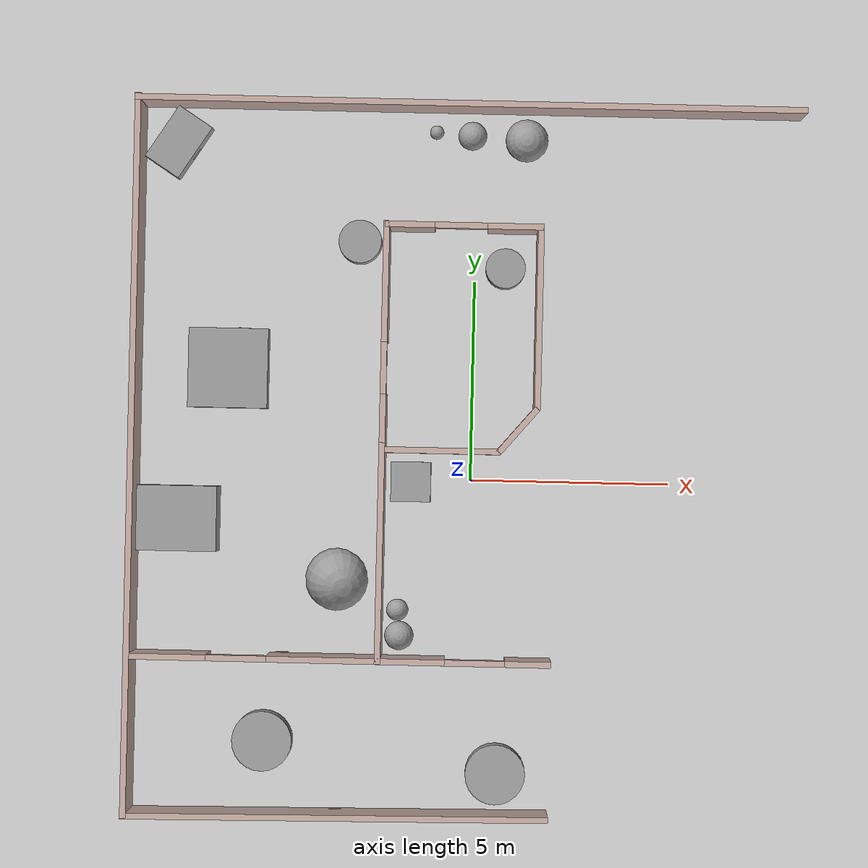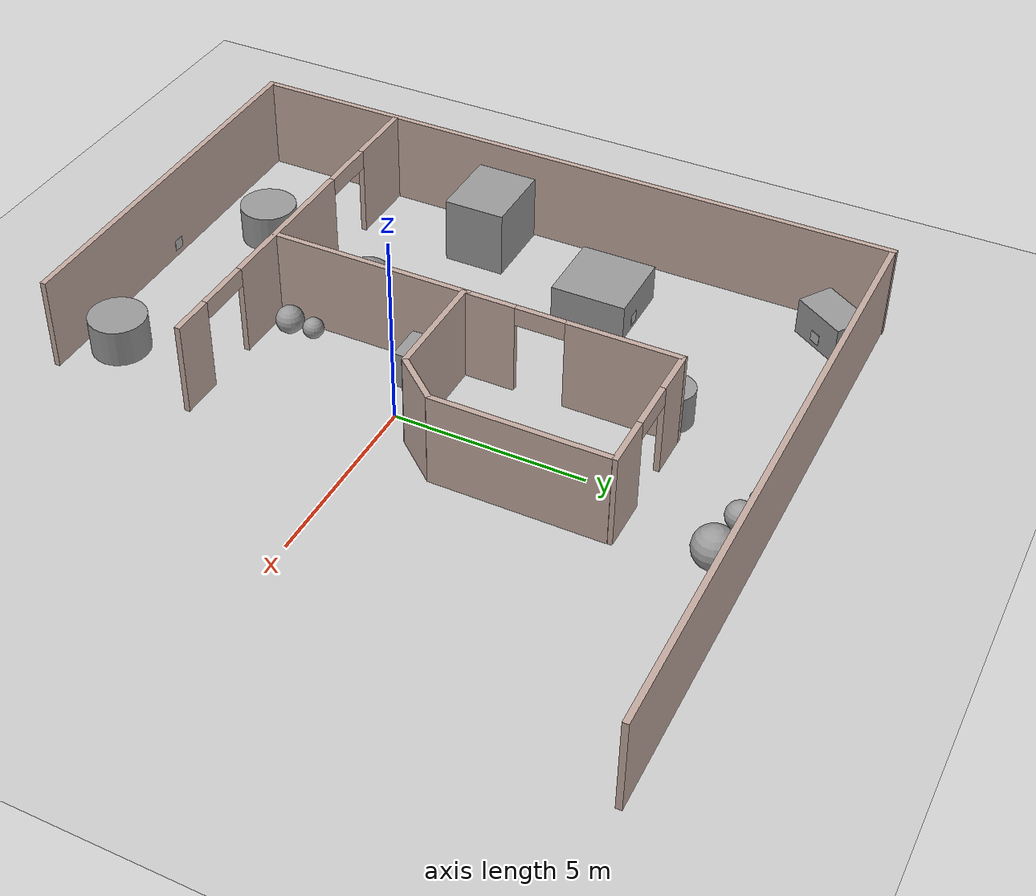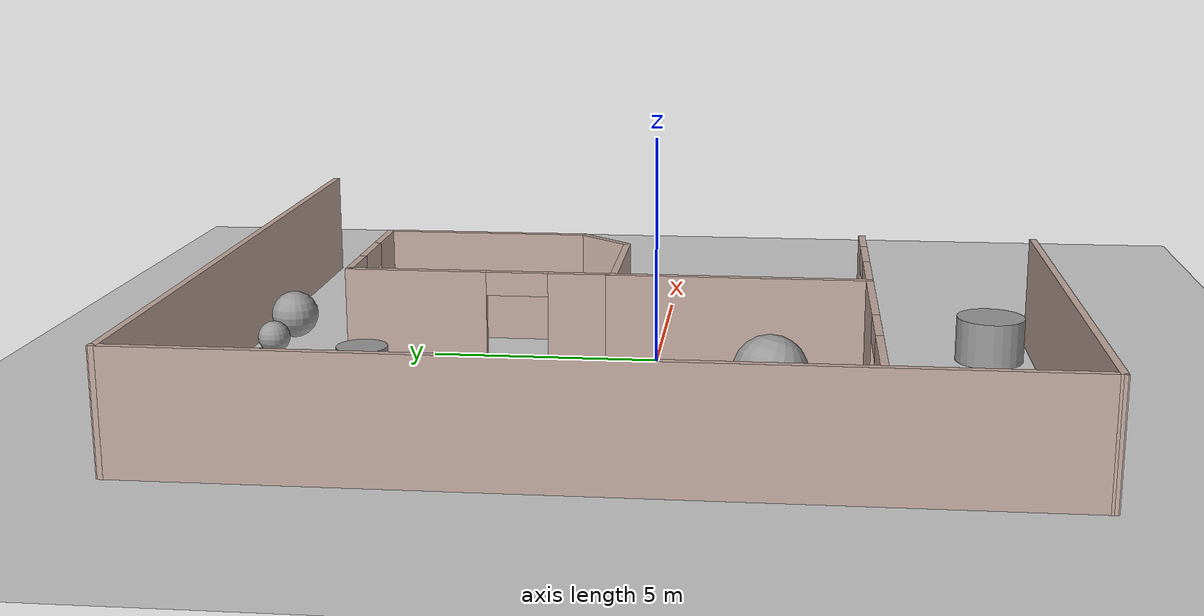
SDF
<sdf version="1.6">
 <world name="default">
  <model name="ground_plane">
   <static>1</static>
   <link name="link">
    <collision name="collision">
     <geometry><plane><normal>0 0 1</normal><size>100 100</size></plane></geometry>
     <surface><friction><ode><mu>100</mu><mu2>50</mu2></ode></friction></surface>
    </collision>
    <visual name="visual">
     <cast_shadows>0</cast_shadows>
     <geometry><plane><normal>0 0 1</normal><size>100 100</size></plane></geometry>
     <material>
      <script><uri>file://media/materials/scripts/gazebo.material</uri><name>Gazebo/Grey</name></script>
     </material>
    </visual>
   </link>
  </model>
  <model name="Apriltag36_11_00000">
   <link name="main">
    <visual name="main_Visual">
     <geometry><box><size>0.3 0.3 0.01</size></box></geometry>
     <material>
      <script>
       <uri>model://Apriltag36_11_00000/materials/scripts</uri>
       <uri>model://Apriltag36_11_00000/materials/textures</uri>
       <name>Apriltag36_11_00000</name>
      </script>
     </material>
    </visual>
   </link>
   <static>1</static>
   <pose>-1.57021 -0.566574 0.316551 1.5708 -0 0</pose>
  </model>
  <model name="Apriltag36_11_00004">
   <link name="main">
    <visual name="main_Visual">
     <geometry><box><size>0.3 0.3 0.01</size></box></geometry>
     <material>
      <script>
       <uri>model://Apriltag36_11_00004/materials/scripts</uri>
       <uri>model://Apriltag36_11_00004/materials/textures</uri>
       <name>Apriltag36_11_00004</name>
      </script>
     </material>
    </visual>
   </link>
   <static>1</static>
   <pose>-0.397155 0.800504 0.224863 -1.5708 0 0</pose>
  </model>
  <model name="Apriltag36_11_00005">
   <link name="main">
    <visual name="main_Visual">
     <geometry><box><size>0.3 0.3 0.01</size></box></geometry>
     <material>
      <script>
       <uri>model://Apriltag36_11_00005/materials/scripts</uri>
       <uri>model://Apriltag36_11_00005/materials/textures</uri>
       <name>Apriltag36_11_00005</name>
      </script>
     </material>
    </visual>
   </link>
   <static>1</static>
   <pose>-5.77552 3.72138 0.309475 -1.5708 0 0</pose>
  </model>
  <model name="Apriltag36_11_00006">
   <link name="main">
    <visual name="main_Visual">
     <geometry><box><size>0.3 0.3 0.01</size></box></geometry>
     <material>
      <script>
       <uri>model://Apriltag36_11_00006/materials/scripts</uri>
       <uri>model://Apriltag36_11_00006/materials/textures</uri>
       <name>Apriltag36_11_00006</name>
      </script>
     </material>
    </visual>
   </link>
   <static>1</static>
   <pose>-4.6719 -4.44536 0.215111 -1.5708 0 0</pose>
  </model>
  <model name="Apriltag36_11_00007">
   <link name="main">
    <visual name="main_Visual">
     <geometry><box><size>0.3 0.3 0.01</size></box></geometry>
     <material>
      <script>
       <uri>model://Apriltag36_11_00007/materials/scripts</uri>
       <uri>model://Apriltag36_11_00007/materials/textures</uri>
       <name>Apriltag36_11_00007</name>
      </script>
     </material>
    </visual>
   </link>
   <static>1</static>
   <pose>-7.08722 8.06862 0.297914 -2.57762 1.57079 3.13881</pose>
  </model>
  <model name="Apriltag36_11_00010">
   <link name="main">
    <visual name="main_Visual">
     <geometry><box><size>0.3 0.3 0.01</size></box></geometry>
     <material>
      <script>
       <uri>model://Apriltag36_11_00010/materials/scripts</uri>
       <uri>model://Apriltag36_11_00010/materials/textures</uri>
       <name>Apriltag36_11_00010</name>
      </script>
     </material>
    </visual>
   </link>
   <static>1</static>
   <pose>-3.24803 -8.3556 0.338631 -1.5708 0 0</pose>
  </model>
  <model name="unit_box">
   <pose>-1.50535 -0.067022 0.499995 0 -1e-05 0</pose>
   <link name="link">
    <inertial>
     <mass>1</mass>
     <inertia>
      <ixx>0.166667</ixx>
      <ixy>0</ixy>
      <ixz>0</ixz>
      <iyy>0.166667</iyy>
      <iyz>0</iyz>
      <izz>0.166667</izz>
     </inertia>
    </inertial>
    <collision name="collision"><geometry><box><size>1 1 1</size></box></geometry></collision>
    <visual name="visual">
     <geometry><box><size>1 1 1</size></box></geometry>
     <material>
      <script><name>Gazebo/Grey</name><uri>file://media/materials/scripts/gazebo.material</uri></script>
     </material>
    </visual>
   </link>
  </model>
  <model name="unit_sphere_1">
   <pose>1.23479 8.58863 0.535665 0 -0 0</pose>
   <link name="link">
    <inertial>
     <mass>1</mass>
     <inertia><ixx>0.1</ixx><ixy>0</ixy><ixz>0</ixz><iyy>0.1</iyy><iyz>0</iyz><izz>0.1</izz></inertia>
    </inertial>
    <collision name="collision"><geometry><sphere><radius>0.535665</radius></sphere></geometry></collision>
    <visual name="visual">
     <geometry><sphere><radius>0.535665</radius></sphere></geometry>
     <material>
      <script><name>Gazebo/Grey</name><uri>file://media/materials/scripts/gazebo.material</uri></script>
     </material>
    </visual>
   </link>
  </model>
  <model name="unit_cylinder_1">
   <pose>0.760114 5.34321 0.499996 3e-06 1e-06 -0</pose>
   <link name="link">
    <inertial>
     <mass>1</mass>
     <inertia><ixx>0.145833</ixx><ixy>0</ixy><ixz>0</ixz><iyy>0.145833</iyy><iyz>0</iyz><izz>0.125</izz></inertia>
    </inertial>
    <collision name="collision">
     <geometry><cylinder><radius>0.5</radius><length>1</length></cylinder></geometry>
    </collision>
    <visual name="visual">
     <geometry><cylinder><radius>0.5</radius><length>1</length></cylinder></geometry>
     <material>
      <script><name>Gazebo/Grey</name><uri>file://media/materials/scripts/gazebo.material</uri></script>
     </material>
    </visual>
   </link>
  </model>
  <model name="unit_box_1">
   <pose>-6.16148 2.69722 0.499986 1.4e-05 -0 -5e-06</pose>
   <link name="link">
    <inertial>
     <mass>1</mass>
     <inertia>
      <ixx>0.166667</ixx>
      <ixy>0</ixy>
      <ixz>0</ixz>
      <iyy>0.166667</iyy>
      <iyz>0</iyz>
      <izz>0.166667</izz>
     </inertia>
    </inertial>
    <collision name="collision"><geometry><box><size>2 2 1</size></box></geometry></collision>
    <visual name="visual">
     <geometry><box><size>2 2 1</size></box></geometry>
     <material>
      <script><name>Gazebo/Grey</name><uri>file://media/materials/scripts/gazebo.material</uri></script>
     </material>
    </visual>
   </link>
  </model>
  <model name="unit_box_1_clone">
   <pose>-7.32637 -1.09862 0.902183 0 -0 -9e-06</pose>
   <link name="link">
    <inertial>
     <mass>1</mass>
     <inertia>
      <ixx>0.166667</ixx>
      <ixy>0</ixy>
      <ixz>0</ixz>
      <iyy>0.166667</iyy>
      <iyz>0</iyz>
      <izz>0.166667</izz>
     </inertia>
    </inertial>
    <collision name="collision"><geometry><box><size>2 1.6321 1.80437</size></box></geometry></collision>
    <visual name="visual">
     <geometry><box><size>2 1.6321 1.80437</size></box></geometry>
     <material>
      <script><name>Gazebo/Grey</name><uri>file://media/materials/scripts/gazebo.material</uri></script>
     </material>
    </visual>
   </link>
  </model>
  <model name="unit_cylinder_2">
   <pose>-5.11308 -6.66758 0.499996 5e-06 5e-06 -3e-06</pose>
   <link name="link">
    <inertial>
     <mass>1</mass>
     <inertia><ixx>0.145833</ixx><ixy>0</ixy><ixz>0</ixz><iyy>0.145833</iyy><iyz>0</iyz><izz>0.125</izz></inertia>
    </inertial>
    <collision name="collision">
     <geometry><cylinder><radius>0.75481</radius><length>1</length></cylinder></geometry>
    </collision>
    <visual name="visual">
     <geometry><cylinder><radius>0.75481</radius><length>1</length></cylinder></geometry>
     <material>
      <script><name>Gazebo/Grey</name><uri>file://media/materials/scripts/gazebo.material</uri></script>
     </material>
    </visual>
   </link>
  </model>
  <model name="unit_cylinder_2_clone">
   <pose>0.767807 -7.38529 0.499996 5e-06 5e-06 -3e-06</pose>
   <link name="link">
    <inertial>
     <mass>1</mass>
     <inertia><ixx>0.145833</ixx><ixy>0</ixy><ixz>0</ixz><iyy>0.145833</iyy><iyz>0</iyz><izz>0.125</izz></inertia>
    </inertial>
    <collision name="collision">
     <geometry><cylinder><radius>0.75481</radius><length>1</length></cylinder></geometry>
    </collision>
    <visual name="visual">
     <geometry><cylinder><radius>0.75481</radius><length>1</length></cylinder></geometry>
     <material>
      <script><name>Gazebo/Grey</name><uri>file://media/materials/scripts/gazebo.material</uri></script>
     </material>
    </visual>
   </link>
  </model>
  <model name="unit_cylinder_3">
   <pose>-2.90641 5.94109 0.499996 4e-06 4e-06 -1e-06</pose>
   <link name="link">
    <inertial>
     <mass>1</mass>
     <inertia><ixx>0.145833</ixx><ixy>0</ixy><ixz>0</ixz><iyy>0.145833</iyy><iyz>0</iyz><izz>0.125</izz></inertia>
    </inertial>
    <collision name="collision">
     <geometry><cylinder><radius>0.54008</radius><length>1</length></cylinder></geometry>
    </collision>
    <visual name="visual">
     <geometry><cylinder><radius>0.54008</radius><length>1</length></cylinder></geometry>
     <material>
      <script><name>Gazebo/Grey</name><uri>file://media/materials/scripts/gazebo.material</uri></script>
     </material>
    </visual>
   </link>
  </model>
  <model name="unit_box_2">
   <pose>-7.51786 8.34872 0.5 0 -0 -0.57762</pose>
   <link name="link">
    <inertial>
     <mass>1</mass>
     <inertia>
      <ixx>0.166667</ixx>
      <ixy>0</ixy>
      <ixz>0</ixz>
      <iyy>0.166667</iyy>
      <iyz>0</iyz>
      <izz>0.166667</izz>
     </inertia>
    </inertial>
    <collision name="collision"><geometry><box><size>1 1.52871 1</size></box></geometry></collision>
    <visual name="visual">
     <geometry><box><size>1 1.52871 1</size></box></geometry>
     <material>
      <script><name>Gazebo/Grey</name><uri>file://media/materials/scripts/gazebo.material</uri></script>
     </material>
    </visual>
   </link>
  </model>
  <model name="unit_sphere_2">
   <pose>-3.3154 -2.55999 0.786618 0.26742 0.258441 -0.030283</pose>
   <link name="link">
    <inertial>
     <mass>1</mass>
     <inertia><ixx>0.1</ixx><ixy>0</ixy><ixz>0</ixz><iyy>0.1</iyy><iyz>0</iyz><izz>0.1</izz></inertia>
    </inertial>
    <collision name="collision"><geometry><sphere><radius>0.786618</radius></sphere></geometry></collision>
    <visual name="visual">
     <geometry><sphere><radius>0.786618</radius></sphere></geometry>
     <material>
      <script><name>Gazebo/Grey</name><uri>file://media/materials/scripts/gazebo.material</uri></script>
     </material>
    </visual>
   </link>
  </model>
  <model name="unit_sphere_3">
   <pose>-0.133786 8.68812 0.359436 0 -0 0</pose>
   <link name="link">
    <inertial>
     <mass>1</mass>
     <inertia><ixx>0.1</ixx><ixy>0</ixy><ixz>0</ixz><iyy>0.1</iyy><iyz>0</iyz><izz>0.1</izz></inertia>
    </inertial>
    <collision name="collision"><geometry><sphere><radius>0.359436</radius></sphere></geometry></collision>
    <visual name="visual">
     <geometry><sphere><radius>0.359436</radius></sphere></geometry>
     <material>
      <script><name>Gazebo/Grey</name><uri>file://media/materials/scripts/gazebo.material</uri></script>
     </material>
    </visual>
   </link>
  </model>
  <model name="unit_sphere_4">
   <pose>-1.0379 8.7732 0.175664 0 -0 0</pose>
   <link name="link">
    <inertial>
     <mass>1</mass>
     <inertia><ixx>0.1</ixx><ixy>0</ixy><ixz>0</ixz><iyy>0.1</iyy><iyz>0</iyz><izz>0.1</izz></inertia>
    </inertial>
    <collision name="collision"><geometry><sphere><radius>0.175664</radius></sphere></geometry></collision>
    <visual name="visual">
     <geometry><sphere><radius>0.175664</radius></sphere></geometry>
     <material>
      <script><name>Gazebo/Grey</name><uri>file://media/materials/scripts/gazebo.material</uri></script>
     </material>
    </visual>
   </link>
  </model>
  <model name="House3">
   <link name="Wall_1">
    <pose>8.92109 0.01342 0 0 -0 1.57168</pose>
    <visual name="Wall_1_Visual">
     <pose>0 0 1.25 0 -0 0</pose>
     <geometry><box><size>16.6946 0.15 2.5</size></box></geometry>
     <material>
      <script><uri>file://media/materials/scripts/gazebo.material</uri><name>Gazebo/Grey</name></script>
      <ambient>0.760784 0.662745 0.627451 1</ambient>
     </material>
     <meta><layer>0</layer></meta>
    </visual>
    <collision name="Wall_1_Collision">
     <pose>0 0 1.25 0 -0 0</pose>
     <geometry><box><size>16.6946 0.15 2.5</size></box></geometry>
     <surface>
      <friction>
       <ode><mu>1</mu><mu2>1</mu2><fdir1>0 0 0</fdir1><slip1>0</slip1><slip2>0</slip2></ode>
       <torsional>
        <coefficient>1</coefficient>
        <patch_radius>0</patch_radius>
        <surface_radius>0</surface_radius>
        <use_patch_radius>1</use_patch_radius>
        <ode><slip>0</slip></ode>
       </torsional>
      </friction>
      <bounce><restitution_coefficient>0</restitution_coefficient><threshold>1e+06</threshold></bounce>
      <contact>
       <collide_without_contact>0</collide_without_contact>
       <collide_without_contact_bitmask>1</collide_without_contact_bitmask>
       <collide_bitmask>1</collide_bitmask>
       <ode>
        <soft_cfm>0</soft_cfm>
        <soft_erp>0.2</soft_erp>
        <kp>1e+13</kp>
        <kd>1</kd>
        <max_vel>0.01</max_vel>
        <min_depth>0</min_depth>
       </ode>
       <bullet>
        <split_impulse>1</split_impulse>
        <split_impulse_penetration_threshold>-0.01</split_impulse_penetration_threshold>
        <soft_cfm>0</soft_cfm>
        <soft_erp>0.2</soft_erp>
        <kp>1e+13</kp>
        <kd>1</kd>
       </bullet>
      </contact>
     </surface>
    </collision>
   </link>
   <link name="Wall_13">
    <pose>-4.97017 2.98867 0 0 -0 1.5708</pose>
    <visual name="Wall_13_Visual_0">
     <pose>-4.67446 0 1.25 0 -0 0</pose>
     <geometry><box><size>1.15108 0.15 2.5</size></box></geometry>
     <material>
      <script><uri>file://media/materials/scripts/gazebo.material</uri><name>Gazebo/Grey</name></script>
      <ambient>0.760784 0.662745 0.627451 1</ambient>
     </material>
     <meta><layer>0</layer></meta>
    </visual>
    <visual name="Wall_13_Visual_1">
     <pose>-0.385408 0 1.25 0 -0 0</pose>
     <geometry><box><size>4.42703 0.15 2.5</size></box></geometry>
     <material>
      <script><uri>file://media/materials/scripts/gazebo.material</uri><name>Gazebo/Grey</name></script>
      <ambient>0.760784 0.662745 0.627451 1</ambient>
     </material>
     <meta><layer>0</layer></meta>
    </visual>
    <visual name="Wall_13_Visual_2">
     <pose>4.28906 0 1.25 0 -0 0</pose>
     <geometry><box><size>1.92189 0.15 2.5</size></box></geometry>
     <material>
      <script><uri>file://media/materials/scripts/gazebo.material</uri><name>Gazebo/Grey</name></script>
      <ambient>0.760784 0.662745 0.627451 1</ambient>
     </material>
     <meta><layer>0</layer></meta>
    </visual>
    <visual name="Wall_13_Visual_3">
     <pose>-3.34892 0 2.25 0 -0 0</pose>
     <geometry><box><size>1.5 0.15 0.5</size></box></geometry>
     <material>
      <script><uri>file://media/materials/scripts/gazebo.material</uri><name>Gazebo/Grey</name></script>
      <ambient>0.760784 0.662745 0.627451 1</ambient>
     </material>
     <meta><layer>0</layer></meta>
    </visual>
    <visual name="Wall_13_Visual_4">
     <pose>2.57811 0 2.25 0 -0 0</pose>
     <geometry><box><size>1.5 0.15 0.5</size></box></geometry>
     <material>
      <script><uri>file://media/materials/scripts/gazebo.material</uri><name>Gazebo/Grey</name></script>
      <ambient>0.760784 0.662745 0.627451 1</ambient>
     </material>
     <meta><layer>0</layer></meta>
    </visual>
    <collision name="Wall_13_Collision_0">
     <pose>-4.67446 0 1.25 0 -0 0</pose>
     <geometry><box><size>1.15108 0.15 2.5</size></box></geometry>
     <surface>
      <friction>
       <ode><mu>1</mu><mu2>1</mu2><fdir1>0 0 0</fdir1><slip1>0</slip1><slip2>0</slip2></ode>
       <torsional>
        <coefficient>1</coefficient>
        <patch_radius>0</patch_radius>
        <surface_radius>0</surface_radius>
        <use_patch_radius>1</use_patch_radius>
        <ode><slip>0</slip></ode>
       </torsional>
      </friction>
      <bounce><restitution_coefficient>0</restitution_coefficient><threshold>1e+06</threshold></bounce>
      <contact>
       <collide_without_contact>0</collide_without_contact>
       <collide_without_contact_bitmask>1</collide_without_contact_bitmask>
       <collide_bitmask>1</collide_bitmask>
       <ode>
        <soft_cfm>0</soft_cfm>
        <soft_erp>0.2</soft_erp>
        <kp>1e+13</kp>
        <kd>1</kd>
        <max_vel>0.01</max_vel>
        <min_depth>0</min_depth>
       </ode>
       <bullet>
        <split_impulse>1</split_impulse>
        <split_impulse_penetration_threshold>-0.01</split_impulse_penetration_threshold>
        <soft_cfm>0</soft_cfm>
        <soft_erp>0.2</soft_erp>
        <kp>1e+13</kp>
        <kd>1</kd>
       </bullet>
      </contact>
     </surface>
    </collision>
    <collision name="Wall_13_Collision_1">
     <pose>-0.385408 0 1.25 0 -0 0</pose>
     <geometry><box><size>4.42703 0.15 2.5</size></box></geometry>
     <surface>
      <friction>
       <ode><mu>1</mu><mu2>1</mu2><fdir1>0 0 0</fdir1><slip1>0</slip1><slip2>0</slip2></ode>
       <torsional>
        <coefficient>1</coefficient>
        <patch_radius>0</patch_radius>
        <surface_radius>0</surface_radius>
        <use_patch_radius>1</use_patch_radius>
        <ode><slip>0</slip></ode>
       </torsional>
      </friction>
      <bounce><restitution_coefficient>0</restitution_coefficient><threshold>1e+06</threshold></bounce>
      <contact>
       <collide_without_contact>0</collide_without_contact>
       <collide_without_contact_bitmask>1</collide_without_contact_bitmask>
       <collide_bitmask>1</collide_bitmask>
       <ode>
        <soft_cfm>0</soft_cfm>
        <soft_erp>0.2</soft_erp>
        <kp>1e+13</kp>
        <kd>1</kd>
        <max_vel>0.01</max_vel>
        <min_depth>0</min_depth>
       </ode>
       <bullet>
        <split_impulse>1</split_impulse>
        <split_impulse_penetration_threshold>-0.01</split_impulse_penetration_threshold>
        <soft_cfm>0</soft_cfm>
        <soft_erp>0.2</soft_erp>
        <kp>1e+13</kp>
        <kd>1</kd>
       </bullet>
      </contact>
     </surface>
    </collision>
    <collision name="Wall_13_Collision_2">
     <pose>4.28906 0 1.25 0 -0 0</pose>
     <geometry><box><size>1.92189 0.15 2.5</size></box></geometry>
     <surface>
      <friction>
       <ode><mu>1</mu><mu2>1</mu2><fdir1>0 0 0</fdir1><slip1>0</slip1><slip2>0</slip2></ode>
       <torsional>
        <coefficient>1</coefficient>
        <patch_radius>0</patch_radius>
        <surface_radius>0</surface_radius>
        <use_patch_radius>1</use_patch_radius>
        <ode><slip>0</slip></ode>
       </torsional>
      </friction>
      <bounce><restitution_coefficient>0</restitution_coefficient><threshold>1e+06</threshold></bounce>
      <contact>
       <collide_without_contact>0</collide_without_contact>
       <collide_without_contact_bitmask>1</collide_without_contact_bitmask>
       <collide_bitmask>1</collide_bitmask>
       <ode>
        <soft_cfm>0</soft_cfm>
        <soft_erp>0.2</soft_erp>
        <kp>1e+13</kp>
        <kd>1</kd>
        <max_vel>0.01</max_vel>
        <min_depth>0</min_depth>
       </ode>
       <bullet>
        <split_impulse>1</split_impulse>
        <split_impulse_penetration_threshold>-0.01</split_impulse_penetration_threshold>
        <soft_cfm>0</soft_cfm>
        <soft_erp>0.2</soft_erp>
        <kp>1e+13</kp>
        <kd>1</kd>
       </bullet>
      </contact>
     </surface>
    </collision>
    <collision name="Wall_13_Collision_3">
     <pose>-3.34892 0 2.25 0 -0 0</pose>
     <geometry><box><size>1.5 0.15 0.5</size></box></geometry>
     <surface>
      <friction>
       <ode><mu>1</mu><mu2>1</mu2><fdir1>0 0 0</fdir1><slip1>0</slip1><slip2>0</slip2></ode>
       <torsional>
        <coefficient>1</coefficient>
        <patch_radius>0</patch_radius>
        <surface_radius>0</surface_radius>
        <use_patch_radius>1</use_patch_radius>
        <ode><slip>0</slip></ode>
       </torsional>
      </friction>
      <bounce><restitution_coefficient>0</restitution_coefficient><threshold>1e+06</threshold></bounce>
      <contact>
       <collide_without_contact>0</collide_without_contact>
       <collide_without_contact_bitmask>1</collide_without_contact_bitmask>
       <collide_bitmask>1</collide_bitmask>
       <ode>
        <soft_cfm>0</soft_cfm>
        <soft_erp>0.2</soft_erp>
        <kp>1e+13</kp>
        <kd>1</kd>
        <max_vel>0.01</max_vel>
        <min_depth>0</min_depth>
       </ode>
       <bullet>
        <split_impulse>1</split_impulse>
        <split_impulse_penetration_threshold>-0.01</split_impulse_penetration_threshold>
        <soft_cfm>0</soft_cfm>
        <soft_erp>0.2</soft_erp>
        <kp>1e+13</kp>
        <kd>1</kd>
       </bullet>
      </contact>
     </surface>
    </collision>
    <collision name="Wall_13_Collision_4">
     <pose>2.57811 0 2.25 0 -0 0</pose>
     <geometry><box><size>1.5 0.15 0.5</size></box></geometry>
     <surface>
      <friction>
       <ode><mu>1</mu><mu2>1</mu2><fdir1>0 0 0</fdir1><slip1>0</slip1><slip2>0</slip2></ode>
       <torsional>
        <coefficient>1</coefficient>
        <patch_radius>0</patch_radius>
        <surface_radius>0</surface_radius>
        <use_patch_radius>1</use_patch_radius>
        <ode><slip>0</slip></ode>
       </torsional>
      </friction>
      <bounce><restitution_coefficient>0</restitution_coefficient><threshold>1e+06</threshold></bounce>
      <contact>
       <collide_without_contact>0</collide_without_contact>
       <collide_without_contact_bitmask>1</collide_without_contact_bitmask>
       <collide_bitmask>1</collide_bitmask>
       <ode>
        <soft_cfm>0</soft_cfm>
        <soft_erp>0.2</soft_erp>
        <kp>1e+13</kp>
        <kd>1</kd>
        <max_vel>0.01</max_vel>
        <min_depth>0</min_depth>
       </ode>
       <bullet>
        <split_impulse>1</split_impulse>
        <split_impulse_penetration_threshold>-0.01</split_impulse_penetration_threshold>
        <soft_cfm>0</soft_cfm>
        <soft_erp>0.2</soft_erp>
        <kp>1e+13</kp>
        <kd>1</kd>
       </bullet>
      </contact>
     </surface>
    </collision>
   </link>
   <link name="Wall_15_clone_0">
    <pose>5.8916 0.125537 0 0 0 -1.5708</pose>
    <inertial>
     <inertia><ixx>0</ixx><ixy>0</ixy><ixz>0</ixz><iyy>0</iyy><iyz>0</iyz><izz>0</izz></inertia>
     <mass>0</mass>
    </inertial>
    <visual name="Wall_15_Visual_0">
     <pose>-1.34561 0 1.25 0 -0 0</pose>
     <geometry><box><size>1.23071 0.15 2.5</size></box></geometry>
     <material>
      <script><uri>file://media/materials/scripts/gazebo.material</uri><name>Gazebo/Grey</name></script>
      <ambient>0.761 0.663 0.627 1</ambient>
      <shader type="vertex"><normal_map>__default__</normal_map></shader>
      <diffuse>0.7 0.7 0.7 1</diffuse>
      <specular>0.01 0.01 0.01 1</specular>
      <emissive>0 0 0 1</emissive>
     </material>
     <meta><layer>0</layer></meta>
    </visual>
    <visual name="Wall_15_Visual_1">
     <pose>1.27939 0 1.25 0 -0 0</pose>
     <geometry><box><size>1.38465 0.15 2.5</size></box></geometry>
     <material>
      <script><uri>file://media/materials/scripts/gazebo.material</uri><name>Gazebo/Grey</name></script>
      <ambient>0.761 0.663 0.627 1</ambient>
      <shader type="vertex"><normal_map>__default__</normal_map></shader>
      <diffuse>0.7 0.7 0.7 1</diffuse>
      <specular>0.01 0.01 0.01 1</specular>
      <emissive>0 0 0 1</emissive>
     </material>
     <meta><layer>0</layer></meta>
    </visual>
    <visual name="Wall_15_Visual_2">
     <pose>-0.06622 0 2.25 0 -0 0</pose>
     <geometry><box><size>1.32 0.15 0.5</size></box></geometry>
     <material>
      <script><uri>file://media/materials/scripts/gazebo.material</uri><name>Gazebo/Grey</name></script>
      <ambient>0.761 0.663 0.627 1</ambient>
      <shader type="vertex"><normal_map>__default__</normal_map></shader>
      <diffuse>0.7 0.7 0.7 1</diffuse>
      <specular>0.01 0.01 0.01 1</specular>
      <emissive>0 0 0 1</emissive>
     </material>
     <meta><layer>0</layer></meta>
    </visual>
    <collision name="Wall_15_Collision_1">
     <pose>1.27939 0 1.25 0 -0 0</pose>
     <geometry><box><size>1.38465 0.15 2.5</size></box></geometry>
     <surface>
      <friction>
       <ode><mu>1</mu><mu2>1</mu2><fdir1>0 0 0</fdir1><slip1>0</slip1><slip2>0</slip2></ode>
       <torsional>
        <coefficient>1</coefficient>
        <patch_radius>0</patch_radius>
        <surface_radius>0</surface_radius>
        <use_patch_radius>1</use_patch_radius>
        <ode><slip>0</slip></ode>
       </torsional>
      </friction>
      <bounce><restitution_coefficient>0</restitution_coefficient><threshold>1e+06</threshold></bounce>
      <contact>
       <collide_without_contact>0</collide_without_contact>
       <collide_without_contact_bitmask>1</collide_without_contact_bitmask>
       <collide_bitmask>1</collide_bitmask>
       <ode>
        <soft_cfm>0</soft_cfm>
        <soft_erp>0.2</soft_erp>
        <kp>1e+13</kp>
        <kd>1</kd>
        <max_vel>0.01</max_vel>
        <min_depth>0</min_depth>
       </ode>
       <bullet>
        <split_impulse>1</split_impulse>
        <split_impulse_penetration_threshold>-0.01</split_impulse_penetration_threshold>
        <soft_cfm>0</soft_cfm>
        <soft_erp>0.2</soft_erp>
        <kp>1e+13</kp>
        <kd>1</kd>
       </bullet>
      </contact>
     </surface>
    </collision>
    <collision name="Wall_15_Collision_2">
     <pose>-0.06622 0 2.25 0 -0 0</pose>
     <geometry><box><size>1.32 0.15 0.5</size></box></geometry>
     <surface>
      <friction>
       <ode><mu>1</mu><mu2>1</mu2><fdir1>0 0 0</fdir1><slip1>0</slip1><slip2>0</slip2></ode>
       <torsional>
        <coefficient>1</coefficient>
        <patch_radius>0</patch_radius>
        <surface_radius>0</surface_radius>
        <use_patch_radius>1</use_patch_radius>
        <ode><slip>0</slip></ode>
       </torsional>
      </friction>
      <bounce><restitution_coefficient>0</restitution_coefficient><threshold>1e+06</threshold></bounce>
      <contact>
       <collide_without_contact>0</collide_without_contact>
       <collide_without_contact_bitmask>1</collide_without_contact_bitmask>
       <collide_bitmask>1</collide_bitmask>
       <ode>
        <soft_cfm>0</soft_cfm>
        <soft_erp>0.2</soft_erp>
        <kp>1e+13</kp>
        <kd>1</kd>
        <max_vel>0.01</max_vel>
        <min_depth>0</min_depth>
       </ode>
       <bullet>
        <split_impulse>1</split_impulse>
        <split_impulse_penetration_threshold>-0.01</split_impulse_penetration_threshold>
        <soft_cfm>0</soft_cfm>
        <soft_erp>0.2</soft_erp>
        <kp>1e+13</kp>
        <kd>1</kd>
       </bullet>
      </contact>
     </surface>
    </collision>
    <collision name="Wall_15_Collision_0">
     <pose>-1.34561 0 1.25 0 -0 0</pose>
     <geometry><box><size>1.23071 0.15 2.5</size></box></geometry>
     <surface>
      <friction>
       <ode><mu>1</mu><mu2>1</mu2><fdir1>0 0 0</fdir1><slip1>0</slip1><slip2>0</slip2></ode>
       <torsional>
        <coefficient>1</coefficient>
        <patch_radius>0</patch_radius>
        <surface_radius>0</surface_radius>
        <use_patch_radius>1</use_patch_radius>
        <ode><slip>0</slip></ode>
       </torsional>
      </friction>
      <bounce><restitution_coefficient>0</restitution_coefficient><threshold>1e+06</threshold></bounce>
      <contact>
       <collide_without_contact>0</collide_without_contact>
       <collide_without_contact_bitmask>1</collide_without_contact_bitmask>
       <collide_bitmask>1</collide_bitmask>
       <ode>
        <soft_cfm>0</soft_cfm>
        <soft_erp>0.2</soft_erp>
        <kp>1e+13</kp>
        <kd>1</kd>
        <max_vel>0.01</max_vel>
        <min_depth>0</min_depth>
       </ode>
       <bullet>
        <split_impulse>1</split_impulse>
        <split_impulse_penetration_threshold>-0.01</split_impulse_penetration_threshold>
        <soft_cfm>0</soft_cfm>
        <soft_erp>0.2</soft_erp>
        <kp>1e+13</kp>
        <kd>1</kd>
       </bullet>
      </contact>
     </surface>
    </collision>
   </link>
   <link name="Wall_15_clone_clone">
    <pose>3.11939 2.05312 0 0 0 -4e-06</pose>
    <inertial>
     <inertia><ixx>0</ixx><ixy>0</ixy><ixz>0</ixz><iyy>0</iyy><iyz>0</iyz><izz>0</izz></inertia>
     <mass>0</mass>
    </inertial>
    <visual name="Wall_15_Visual_2">
     <pose>-0.8 0 2.25 0 -0 0</pose>
     <geometry><box><size>1.3 0.15 0.5</size></box></geometry>
     <material>
      <script><uri>file://media/materials/scripts/gazebo.material</uri><name>Gazebo/Grey</name></script>
      <ambient>0.761 0.663 0.627 1</ambient>
      <shader type="pixel"><normal_map>__default__</normal_map></shader>
      <diffuse>0.7 0.7 0.7 1</diffuse>
      <specular>0.01 0.01 0.01 1</specular>
      <emissive>0 0 0 1</emissive>
     </material>
     <meta><layer>0</layer></meta>
    </visual>
    <visual name="Wall_15_Visual_1">
     <pose>1.35 0 1.25 0 -0 0</pose>
     <geometry><box><size>3 0.15 2.5</size></box></geometry>
     <material>
      <script><uri>file://media/materials/scripts/gazebo.material</uri><name>Gazebo/Grey</name></script>
      <ambient>0.761 0.663 0.627 1</ambient>
      <shader type="pixel"><normal_map>__default__</normal_map></shader>
      <diffuse>0.7 0.7 0.7 1</diffuse>
      <specular>0.01 0.01 0.01 1</specular>
      <emissive>0 0 0 1</emissive>
     </material>
     <meta><layer>0</layer></meta>
    </visual>
    <visual name="Wall_15_Visual_0">
     <pose>-2.1 0 1.25 0 -0 0</pose>
     <geometry><box><size>1.3 0.15 2.5</size></box></geometry>
     <material>
      <script><uri>file://media/materials/scripts/gazebo.material</uri><name>Gazebo/Grey</name></script>
      <ambient>0.761 0.663 0.627 1</ambient>
      <shader type="pixel"><normal_map>__default__</normal_map></shader>
      <diffuse>0.7 0.7 0.7 1</diffuse>
      <specular>0.01 0.01 0.01 1</specular>
      <emissive>0 0 0 1</emissive>
     </material>
     <meta><layer>0</layer></meta>
    </visual>
    <collision name="Wall_15_Collision_1">
     <pose>1.35 0 1.25 0 -0 0</pose>
     <geometry><box><size>3 0.15 2.5</size></box></geometry>
     <surface>
      <friction>
       <ode><mu>1</mu><mu2>1</mu2><fdir1>0 0 0</fdir1><slip1>0</slip1><slip2>0</slip2></ode>
       <torsional>
        <coefficient>1</coefficient>
        <patch_radius>0</patch_radius>
        <surface_radius>0</surface_radius>
        <use_patch_radius>1</use_patch_radius>
        <ode><slip>0</slip></ode>
       </torsional>
      </friction>
      <bounce><restitution_coefficient>0</restitution_coefficient><threshold>1e+06</threshold></bounce>
      <contact>
       <collide_without_contact>0</collide_without_contact>
       <collide_without_contact_bitmask>1</collide_without_contact_bitmask>
       <collide_bitmask>1</collide_bitmask>
       <ode>
        <soft_cfm>0</soft_cfm>
        <soft_erp>0.2</soft_erp>
        <kp>1e+13</kp>
        <kd>1</kd>
        <max_vel>0.01</max_vel>
        <min_depth>0</min_depth>
       </ode>
       <bullet>
        <split_impulse>1</split_impulse>
        <split_impulse_penetration_threshold>-0.01</split_impulse_penetration_threshold>
        <soft_cfm>0</soft_cfm>
        <soft_erp>0.2</soft_erp>
        <kp>1e+13</kp>
        <kd>1</kd>
       </bullet>
      </contact>
     </surface>
    </collision>
    <collision name="Wall_15_Collision_2">
     <pose>-0.8 0 2.25 0 -0 0</pose>
     <geometry><box><size>1.3 0.15 0.5</size></box></geometry>
     <surface>
      <friction>
       <ode><mu>1</mu><mu2>1</mu2><fdir1>0 0 0</fdir1><slip1>0</slip1><slip2>0</slip2></ode>
       <torsional>
        <coefficient>1</coefficient>
        <patch_radius>0</patch_radius>
        <surface_radius>0</surface_radius>
        <use_patch_radius>1</use_patch_radius>
        <ode><slip>0</slip></ode>
       </torsional>
      </friction>
      <bounce><restitution_coefficient>0</restitution_coefficient><threshold>1e+06</threshold></bounce>
      <contact>
       <collide_without_contact>0</collide_without_contact>
       <collide_without_contact_bitmask>1</collide_without_contact_bitmask>
       <collide_bitmask>1</collide_bitmask>
       <ode>
        <soft_cfm>0</soft_cfm>
        <soft_erp>0.2</soft_erp>
        <kp>1e+13</kp>
        <kd>1</kd>
        <max_vel>0.01</max_vel>
        <min_depth>0</min_depth>
       </ode>
       <bullet>
        <split_impulse>1</split_impulse>
        <split_impulse_penetration_threshold>-0.01</split_impulse_penetration_threshold>
        <soft_cfm>0</soft_cfm>
        <soft_erp>0.2</soft_erp>
        <kp>1e+13</kp>
        <kd>1</kd>
       </bullet>
      </contact>
     </surface>
    </collision>
    <collision name="Wall_15_Collision_0">
     <pose>-2.1 0 1.25 0 -0 0</pose>
     <geometry><box><size>1.3 0.15 2.5</size></box></geometry>
     <surface>
      <friction>
       <ode><mu>1</mu><mu2>1</mu2><fdir1>0 0 0</fdir1><slip1>0</slip1><slip2>0</slip2></ode>
       <torsional>
        <coefficient>1</coefficient>
        <patch_radius>0</patch_radius>
        <surface_radius>0</surface_radius>
        <use_patch_radius>1</use_patch_radius>
        <ode><slip>0</slip></ode>
       </torsional>
      </friction>
      <bounce><restitution_coefficient>0</restitution_coefficient><threshold>1e+06</threshold></bounce>
      <contact>
       <collide_without_contact>0</collide_without_contact>
       <collide_without_contact_bitmask>1</collide_without_contact_bitmask>
       <collide_bitmask>1</collide_bitmask>
       <ode>
        <soft_cfm>0</soft_cfm>
        <soft_erp>0.2</soft_erp>
        <kp>1e+13</kp>
        <kd>1</kd>
        <max_vel>0.01</max_vel>
        <min_depth>0</min_depth>
       </ode>
       <bullet>
        <split_impulse>1</split_impulse>
        <split_impulse_penetration_threshold>-0.01</split_impulse_penetration_threshold>
        <soft_cfm>0</soft_cfm>
        <soft_erp>0.2</soft_erp>
        <kp>1e+13</kp>
        <kd>1</kd>
       </bullet>
      </contact>
     </surface>
    </collision>
   </link>
   <link name="Wall_17">
    <pose>0.462169 2.05466 0 0 -0 3.14159</pose>
    <inertial>
     <mass>1</mass>
     <inertia><ixx>1</ixx><ixy>0</ixy><ixz>0</ixz><iyy>1</iyy><iyz>0</iyz><izz>1</izz></inertia>
    </inertial>
    <visual name="Wall_17_Visual">
     <pose>2.75 0 1.25 0 -0 0</pose>
     <geometry><box><size>5.5 0.15 2.5</size></box></geometry>
     <material>
      <script><uri>file://media/materials/scripts/gazebo.material</uri><name>Gazebo/Grey</name></script>
      <ambient>0.761 0.663 0.627 1</ambient>
      <shader type="vertex"><normal_map>__default__</normal_map></shader>
      <diffuse>0.7 0.7 0.7 1</diffuse>
      <specular>0.01 0.01 0.01 1</specular>
      <emissive>0 0 0 1</emissive>
     </material>
     <meta><layer>0</layer></meta>
    </visual>
    <collision name="Wall_17_Collision">
     <pose>2.75 0 1.25 0 -0 0</pose>
     <geometry><box><size>5.5 0.15 2.5</size></box></geometry>
     <surface>
      <friction>
       <ode><mu>1</mu><mu2>1</mu2><fdir1>0 0 0</fdir1><slip1>0</slip1><slip2>0</slip2></ode>
       <torsional>
        <coefficient>1</coefficient>
        <patch_radius>0</patch_radius>
        <surface_radius>0</surface_radius>
        <use_patch_radius>1</use_patch_radius>
        <ode><slip>0</slip></ode>
       </torsional>
      </friction>
      <bounce><restitution_coefficient>0</restitution_coefficient><threshold>1e+06</threshold></bounce>
      <contact>
       <collide_without_contact>0</collide_without_contact>
       <collide_without_contact_bitmask>1</collide_without_contact_bitmask>
       <collide_bitmask>1</collide_bitmask>
       <ode>
        <soft_cfm>0</soft_cfm>
        <soft_erp>0.2</soft_erp>
        <kp>1e+13</kp>
        <kd>1</kd>
        <max_vel>0.01</max_vel>
        <min_depth>0</min_depth>
       </ode>
       <bullet>
        <split_impulse>1</split_impulse>
        <split_impulse_penetration_threshold>-0.01</split_impulse_penetration_threshold>
        <soft_cfm>0</soft_cfm>
        <soft_erp>0.2</soft_erp>
        <kp>1e+13</kp>
        <kd>1</kd>
       </bullet>
      </contact>
     </surface>
    </collision>
   </link>
   <link name="Wall_19">
    <pose>0.292319 0.139844 0 0 0 -1.5708</pose>
    <inertial>
     <mass>1</mass>
     <inertia><ixx>1</ixx><ixy>0</ixy><ixz>0</ixz><iyy>1</iyy><iyz>0</iyz><izz>1</izz></inertia>
    </inertial>
    <visual name="Wall_19_Visual">
     <pose>-0.45 0 1.25 0 -0 0</pose>
     <geometry><box><size>3 0.15 2.5</size></box></geometry>
     <material>
      <script><uri>file://media/materials/scripts/gazebo.material</uri><name>Gazebo/Grey</name></script>
      <ambient>0.761 0.663 0.627 1</ambient>
      <shader type="vertex"><normal_map>__default__</normal_map></shader>
      <diffuse>0.7 0.7 0.7 1</diffuse>
      <specular>0.01 0.01 0.01 1</specular>
      <emissive>0 0 0 1</emissive>
     </material>
     <meta><layer>0</layer></meta>
    </visual>
    <collision name="Wall_19_Collision">
     <pose>-0.45 0 1.25 0 -0 0</pose>
     <geometry><box><size>3 0.15 2.5</size></box></geometry>
     <surface>
      <friction>
       <ode><mu>1</mu><mu2>1</mu2><fdir1>0 0 0</fdir1><slip1>0</slip1><slip2>0</slip2></ode>
       <torsional>
        <coefficient>1</coefficient>
        <patch_radius>0</patch_radius>
        <surface_radius>0</surface_radius>
        <use_patch_radius>1</use_patch_radius>
        <ode><slip>0</slip></ode>
       </torsional>
      </friction>
      <bounce><restitution_coefficient>0</restitution_coefficient><threshold>1e+06</threshold></bounce>
      <contact>
       <collide_without_contact>0</collide_without_contact>
       <collide_without_contact_bitmask>1</collide_without_contact_bitmask>
       <collide_bitmask>1</collide_bitmask>
       <ode>
        <soft_cfm>0</soft_cfm>
        <soft_erp>0.2</soft_erp>
        <kp>1e+13</kp>
        <kd>1</kd>
        <max_vel>0.01</max_vel>
        <min_depth>0</min_depth>
       </ode>
       <bullet>
        <split_impulse>1</split_impulse>
        <split_impulse_penetration_threshold>-0.01</split_impulse_penetration_threshold>
        <soft_cfm>0</soft_cfm>
        <soft_erp>0.2</soft_erp>
        <kp>1e+13</kp>
        <kd>1</kd>
       </bullet>
      </contact>
     </surface>
    </collision>
   </link>
   <link name="Wall_19_clone">
    <pose>1.17346 -1.61878 0 0 0 -0.705011</pose>
    <inertial>
     <mass>1</mass>
     <inertia><ixx>1</ixx><ixy>0</ixy><ixz>0</ixz><iyy>1</iyy><iyz>0</iyz><izz>1</izz></inertia>
    </inertial>
    <visual name="Wall_19_Visual">
     <pose>-0.45 0 1.25 0 -0 0</pose>
     <geometry><box><size>1.45 0.15 2.5</size></box></geometry>
     <material>
      <script><uri>file://media/materials/scripts/gazebo.material</uri><name>Gazebo/Grey</name></script>
      <ambient>0.761 0.663 0.627 1</ambient>
      <shader type="vertex"><normal_map>__default__</normal_map></shader>
      <diffuse>0.7 0.7 0.7 1</diffuse>
      <specular>0.01 0.01 0.01 1</specular>
      <emissive>0 0 0 1</emissive>
     </material>
     <meta><layer>0</layer></meta>
    </visual>
    <collision name="Wall_19_Collision">
     <pose>-0.45 0 1.25 0 -0 0</pose>
     <geometry><box><size>1.45 0.15 2.5</size></box></geometry>
     <surface>
      <friction>
       <ode><mu>1</mu><mu2>1</mu2><fdir1>0 0 0</fdir1><slip1>0</slip1><slip2>0</slip2></ode>
       <torsional>
        <coefficient>1</coefficient>
        <patch_radius>0</patch_radius>
        <surface_radius>0</surface_radius>
        <use_patch_radius>1</use_patch_radius>
        <ode><slip>0</slip></ode>
       </torsional>
      </friction>
      <bounce><restitution_coefficient>0</restitution_coefficient><threshold>1e+06</threshold></bounce>
      <contact>
       <collide_without_contact>0</collide_without_contact>
       <collide_without_contact_bitmask>1</collide_without_contact_bitmask>
       <collide_bitmask>1</collide_bitmask>
       <ode>
        <soft_cfm>0</soft_cfm>
        <soft_erp>0.2</soft_erp>
        <kp>1e+13</kp>
        <kd>1</kd>
        <max_vel>0.01</max_vel>
        <min_depth>0</min_depth>
       </ode>
       <bullet>
        <split_impulse>1</split_impulse>
        <split_impulse_penetration_threshold>-0.01</split_impulse_penetration_threshold>
        <soft_cfm>0</soft_cfm>
        <soft_erp>0.2</soft_erp>
        <kp>1e+13</kp>
        <kd>1</kd>
       </bullet>
      </contact>
     </surface>
    </collision>
   </link>
   <link name="Wall_20">
    <pose>3.09232 -1.78516 0 0 -0 0</pose>
    <inertial>
     <mass>1</mass>
     <inertia><ixx>1</ixx><ixy>0</ixy><ixz>0</ixz><iyy>1</iyy><iyz>0</iyz><izz>1</izz></inertia>
    </inertial>
    <visual name="Wall_20_Visual">
     <pose>0.5 0 1.25 0 -0 0</pose>
     <geometry><box><size>4.5 0.15 2.5</size></box></geometry>
     <material>
      <script><uri>file://media/materials/scripts/gazebo.material</uri><name>Gazebo/Grey</name></script>
      <ambient>0.761 0.663 0.627 1</ambient>
      <shader type="vertex"><normal_map>__default__</normal_map></shader>
      <diffuse>0.7 0.7 0.7 1</diffuse>
      <specular>0.01 0.01 0.01 1</specular>
      <emissive>0 0 0 1</emissive>
     </material>
     <meta><layer>0</layer></meta>
    </visual>
    <collision name="Wall_20_Collision">
     <pose>0.5 0 1.25 0 -0 0</pose>
     <geometry><box><size>4.5 0.15 2.5</size></box></geometry>
     <surface>
      <friction>
       <ode><mu>1</mu><mu2>1</mu2><fdir1>0 0 0</fdir1><slip1>0</slip1><slip2>0</slip2></ode>
       <torsional>
        <coefficient>1</coefficient>
        <patch_radius>0</patch_radius>
        <surface_radius>0</surface_radius>
        <use_patch_radius>1</use_patch_radius>
        <ode><slip>0</slip></ode>
       </torsional>
      </friction>
      <bounce><restitution_coefficient>0</restitution_coefficient><threshold>1e+06</threshold></bounce>
      <contact>
       <collide_without_contact>0</collide_without_contact>
       <collide_without_contact_bitmask>1</collide_without_contact_bitmask>
       <collide_bitmask>1</collide_bitmask>
       <ode>
        <soft_cfm>0</soft_cfm>
        <soft_erp>0.2</soft_erp>
        <kp>1e+13</kp>
        <kd>1</kd>
        <max_vel>0.01</max_vel>
        <min_depth>0</min_depth>
       </ode>
       <bullet>
        <split_impulse>1</split_impulse>
        <split_impulse_penetration_threshold>-0.01</split_impulse_penetration_threshold>
        <soft_cfm>0</soft_cfm>
        <soft_erp>0.2</soft_erp>
        <kp>1e+13</kp>
        <kd>1</kd>
       </bullet>
      </contact>
     </surface>
    </collision>
   </link>
   <link name="Wall_3">
    <pose>0.012014 8.28571 0 0 -0 3.14159</pose>
    <visual name="Wall_3_Visual">
     <pose>0 0 1.25 0 -0 0</pose>
     <geometry><box><size>18 0.15 2.5</size></box></geometry>
     <material>
      <script><uri>file://media/materials/scripts/gazebo.material</uri><name>Gazebo/Grey</name></script>
      <ambient>0.760784 0.662745 0.627451 1</ambient>
     </material>
     <meta><layer>0</layer></meta>
    </visual>
    <collision name="Wall_3_Collision">
     <pose>0 0 1.25 0 -0 0</pose>
     <geometry><box><size>18 0.15 2.5</size></box></geometry>
     <surface>
      <friction>
       <ode><mu>1</mu><mu2>1</mu2><fdir1>0 0 0</fdir1><slip1>0</slip1><slip2>0</slip2></ode>
       <torsional>
        <coefficient>1</coefficient>
        <patch_radius>0</patch_radius>
        <surface_radius>0</surface_radius>
        <use_patch_radius>1</use_patch_radius>
        <ode><slip>0</slip></ode>
       </torsional>
      </friction>
      <bounce><restitution_coefficient>0</restitution_coefficient><threshold>1e+06</threshold></bounce>
      <contact>
       <collide_without_contact>0</collide_without_contact>
       <collide_without_contact_bitmask>1</collide_without_contact_bitmask>
       <collide_bitmask>1</collide_bitmask>
       <ode>
        <soft_cfm>0</soft_cfm>
        <soft_erp>0.2</soft_erp>
        <kp>1e+13</kp>
        <kd>1</kd>
        <max_vel>0.01</max_vel>
        <min_depth>0</min_depth>
       </ode>
       <bullet>
        <split_impulse>1</split_impulse>
        <split_impulse_penetration_threshold>-0.01</split_impulse_penetration_threshold>
        <soft_cfm>0</soft_cfm>
        <soft_erp>0.2</soft_erp>
        <kp>1e+13</kp>
        <kd>1</kd>
       </bullet>
      </contact>
     </surface>
    </collision>
   </link>
   <link name="Wall_5">
    <pose>-8.87822 3.04988 0 0 0 -1.55973</pose>
    <visual name="Wall_5_Visual">
     <pose>0 0 1.25 0 -0 0</pose>
     <geometry><box><size>10.6219 0.15 2.5</size></box></geometry>
     <material>
      <script><uri>file://media/materials/scripts/gazebo.material</uri><name>Gazebo/Grey</name></script>
      <ambient>0.760784 0.662745 0.627451 1</ambient>
     </material>
     <meta><layer>0</layer></meta>
    </visual>
    <collision name="Wall_5_Collision">
     <pose>0 0 1.25 0 -0 0</pose>
     <geometry><box><size>10.6219 0.15 2.5</size></box></geometry>
     <surface>
      <friction>
       <ode><mu>1</mu><mu2>1</mu2><fdir1>0 0 0</fdir1><slip1>0</slip1><slip2>0</slip2></ode>
       <torsional>
        <coefficient>1</coefficient>
        <patch_radius>0</patch_radius>
        <surface_radius>0</surface_radius>
        <use_patch_radius>1</use_patch_radius>
        <ode><slip>0</slip></ode>
       </torsional>
      </friction>
      <bounce><restitution_coefficient>0</restitution_coefficient><threshold>1e+06</threshold></bounce>
      <contact>
       <collide_without_contact>0</collide_without_contact>
       <collide_without_contact_bitmask>1</collide_without_contact_bitmask>
       <collide_bitmask>1</collide_bitmask>
       <ode>
        <soft_cfm>0</soft_cfm>
        <soft_erp>0.2</soft_erp>
        <kp>1e+13</kp>
        <kd>1</kd>
        <max_vel>0.01</max_vel>
        <min_depth>0</min_depth>
       </ode>
       <bullet>
        <split_impulse>1</split_impulse>
        <split_impulse_penetration_threshold>-0.01</split_impulse_penetration_threshold>
        <soft_cfm>0</soft_cfm>
        <soft_erp>0.2</soft_erp>
        <kp>1e+13</kp>
        <kd>1</kd>
       </bullet>
      </contact>
     </surface>
    </collision>
   </link>
   <static>1</static>
   <pose>-0.171553 0.43373 0 0 -0 1.5708</pose>
  </model>
  <model name="unit_sphere_0_clone">
   <pose>-1.72609 -3.95726 0.365267 0.002672 0.00024 -2.9e-05</pose>
   <link name="link">
    <inertial>
     <mass>1</mass>
     <inertia><ixx>0.1</ixx><ixy>0</ixy><ixz>0</ixz><iyy>0.1</iyy><iyz>0</iyz><izz>0.1</izz></inertia>
    </inertial>
    <collision name="collision"><geometry><sphere><radius>0.365268</radius></sphere></geometry></collision>
    <visual name="visual">
     <geometry><sphere><radius>0.365268</radius></sphere></geometry>
     <material>
      <script><name>Gazebo/Grey</name><uri>file://media/materials/scripts/gazebo.material</uri></script>
     </material>
    </visual>
   </link>
  </model>
  <model name="unit_sphere_0_clone_clone">
   <pose>-1.78096 -3.31063 0.27459 -0.108629 -0.009218 0.000477</pose>
   <link name="link">
    <inertial>
     <mass>1</mass>
     <inertia><ixx>0.1</ixx><ixy>0</ixy><ixz>0</ixz><iyy>0.1</iyy><iyz>0</iyz><izz>0.1</izz></inertia>
    </inertial>
    <collision name="collision"><geometry><sphere><radius>0.27459</radius></sphere></geometry></collision>
    <visual name="visual">
     <geometry><sphere><radius>0.27459</radius></sphere></geometry>
     <material>
      <script><name>Gazebo/Grey</name><uri>file://media/materials/scripts/gazebo.material</uri></script>
     </material>
    </visual>
   </link>
  </model>
 </world>
</sdf>
